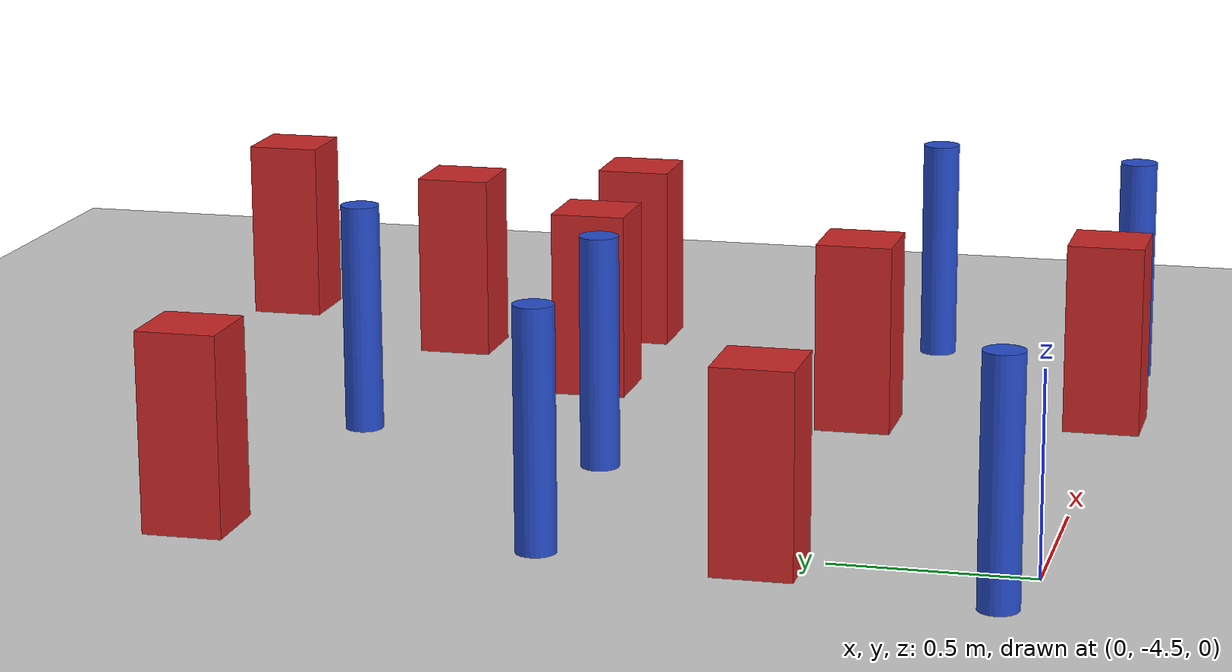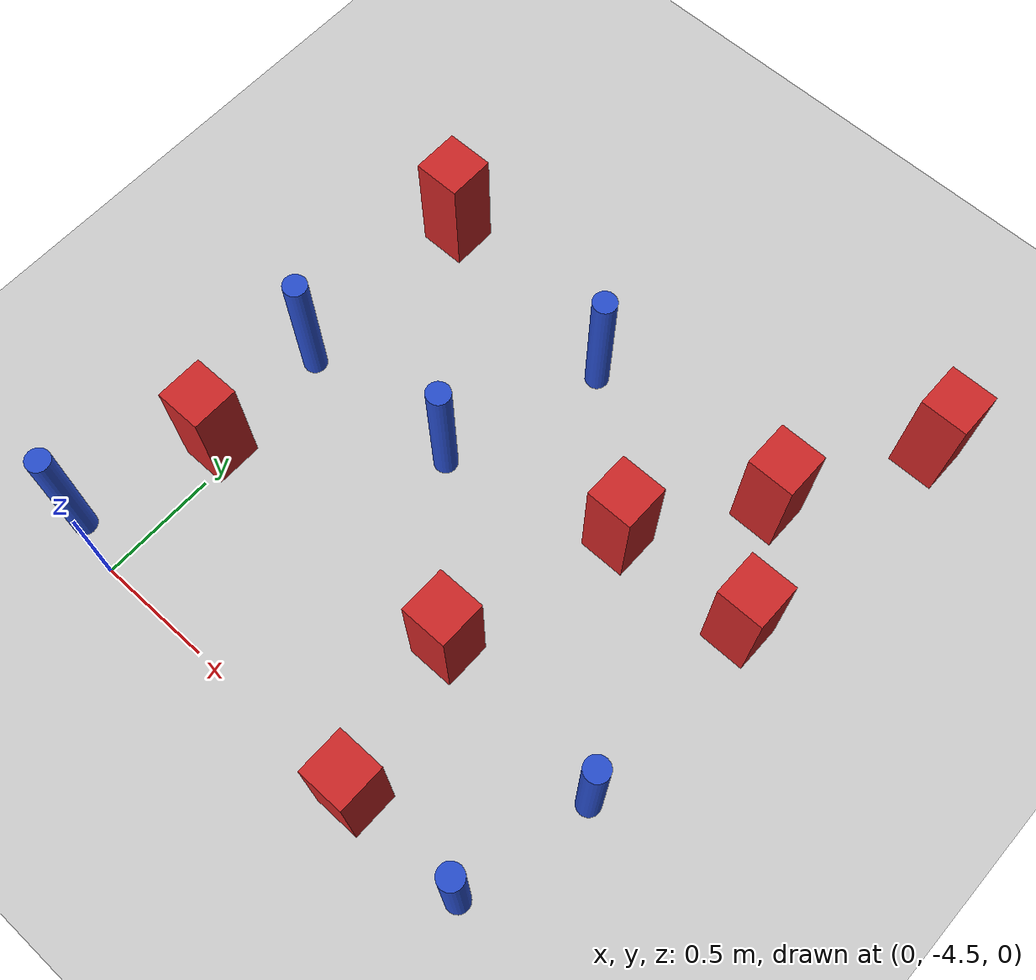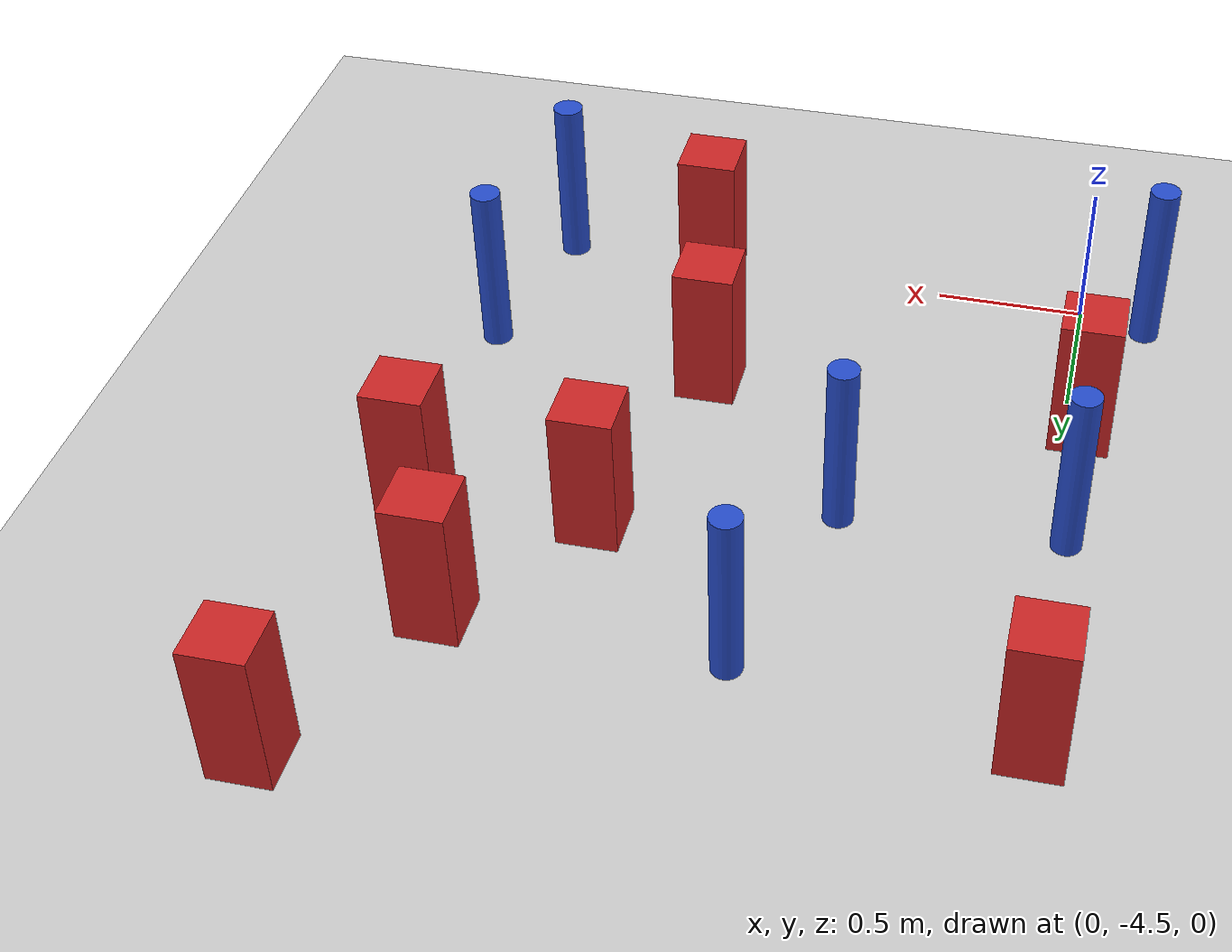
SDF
<sdf version="1.6">
 <world name="default">
  <model name="ground_plane">
   <static>1</static>
   <link name="link">
    <collision name="collision">
     <geometry><plane><normal>0 0 1</normal><size>100 100</size></plane></geometry>
     <surface><friction><ode><mu>100</mu><mu2>50</mu2></ode></friction></surface>
    </collision>
    <visual name="visual">
     <cast_shadows>0</cast_shadows>
     <geometry><plane><normal>0 0 1</normal><size>100 100</size></plane></geometry>
     <material>
      <ambient>1.0 1.0 1.0 1.0</ambient>
      <diffuse>0.8 0.8 0.8 1.0</diffuse>
      <specular>0.01 0.01 0.01 1.000000</specular>
     </material>
    </visual>
   </link>
  </model>
  <model name="square_post_obstacle33">
   <static>true</static>
   <pose>1.38309810057 -3.08793547738 8.22691968438e-08 7.2212513382e-06 -7.54495500217e-07 2.29674213826e-05</pose>
   <link name="link">
    <pose>0 0 0.25 0 -0 0</pose>
    <inertial>
     <mass>100</mass>
     <inertia>
      <ixx>0.166667</ixx>
      <ixy>0</ixy>
      <ixz>0</ixz>
      <iyy>0.166667</iyy>
      <iyz>0</iyz>
      <izz>0.166667</izz>
     </inertia>
    </inertial>
    <collision name="collision"><geometry><box><size>.2 .2 .5</size></box></geometry></collision>
    <visual name="visual">
     <geometry><box><size>.2 .2 .5</size></box></geometry>
     <material>
      <script><name>Gazebo/Red</name><uri>file://media/materials/scripts/gazebo.material</uri></script>
     </material>
    </visual>
   </link>
  </model>
  <model name="pole_obstacle45">
   <static>true</static>
   <pose>1.85048243267 -4.50542198533 2.88873142074e-08 -9.90536689852e-09 4.60219948989e-07 -1.2096599496e-07</pose>
   <link name="link">
    <pose>0 0 0.3 0 -0 0</pose>
    <inertial>
     <mass>1</mass>
     <inertia><ixx>0.145833</ixx><ixy>0</ixy><ixz>0</ixz><iyy>0.145833</iyy><iyz>0</iyz><izz>0.125</izz></inertia>
    </inertial>
    <collision name="collision">
     <geometry><cylinder><radius>0.05</radius><length>.6</length></cylinder></geometry>
    </collision>
    <visual name="visual">
     <geometry><cylinder><radius>0.05</radius><length>.6</length></cylinder></geometry>
     <material>
      <script><name>Gazebo/Blue</name><uri>file://media/materials/scripts/gazebo.material</uri></script>
     </material>
    </visual>
   </link>
  </model>
  <model name="square_post_obstacle69">
   <static>true</static>
   <pose>-0.0511654074525 -2.46885445732 8.22691968438e-08 7.2212513382e-06 -7.54495500217e-07 2.29674213826e-05</pose>
   <link name="link">
    <pose>0 0 0.25 0 -0 0</pose>
    <inertial>
     <mass>100</mass>
     <inertia>
      <ixx>0.166667</ixx>
      <ixy>0</ixy>
      <ixz>0</ixz>
      <iyy>0.166667</iyy>
      <iyz>0</iyz>
      <izz>0.166667</izz>
     </inertia>
    </inertial>
    <collision name="collision"><geometry><box><size>.2 .2 .5</size></box></geometry></collision>
    <visual name="visual">
     <geometry><box><size>.2 .2 .5</size></box></geometry>
     <material>
      <script><name>Gazebo/Red</name><uri>file://media/materials/scripts/gazebo.material</uri></script>
     </material>
    </visual>
   </link>
  </model>
  <model name="pole_obstacle88">
   <static>true</static>
   <pose>0.648081252535 -3.28849379341 2.88873142074e-08 -9.90536689636e-09 4.60219948994e-07 -1.20965994958e-07</pose>
   <link name="link">
    <pose>0 0 0.3 0 -0 0</pose>
    <inertial>
     <mass>1</mass>
     <inertia><ixx>0.145833</ixx><ixy>0</ixy><ixz>0</ixz><iyy>0.145833</iyy><iyz>0</iyz><izz>0.125</izz></inertia>
    </inertial>
    <collision name="collision">
     <geometry><cylinder><radius>0.05</radius><length>.6</length></cylinder></geometry>
    </collision>
    <visual name="visual">
     <geometry><cylinder><radius>0.05</radius><length>.6</length></cylinder></geometry>
     <material>
      <script><name>Gazebo/Blue</name><uri>file://media/materials/scripts/gazebo.material</uri></script>
     </material>
    </visual>
   </link>
  </model>
  <model name="pole_obstacle103">
   <static>true</static>
   <pose>-0.22448012162 -4.43620303594 2.88873142074e-08 -9.90536689703e-09 4.60219948992e-07 -1.20965994959e-07</pose>
   <link name="link">
    <pose>0 0 0.3 0 -0 0</pose>
    <inertial>
     <mass>1</mass>
     <inertia><ixx>0.145833</ixx><ixy>0</ixy><ixz>0</ixz><iyy>0.145833</iyy><iyz>0</iyz><izz>0.125</izz></inertia>
    </inertial>
    <collision name="collision">
     <geometry><cylinder><radius>0.05</radius><length>.6</length></cylinder></geometry>
    </collision>
    <visual name="visual">
     <geometry><cylinder><radius>0.05</radius><length>.6</length></cylinder></geometry>
     <material>
      <script><name>Gazebo/Blue</name><uri>file://media/materials/scripts/gazebo.material</uri></script>
     </material>
    </visual>
   </link>
  </model>
  <model name="square_post_obstacle95">
   <static>true</static>
   <pose>-0.055517162418 -3.85417466073 8.22691968438e-08 7.2212513382e-06 -7.54495500217e-07 2.29674213826e-05</pose>
   <link name="link">
    <pose>0 0 0.25 0 -0 0</pose>
    <inertial>
     <mass>100</mass>
     <inertia>
      <ixx>0.166667</ixx>
      <ixy>0</ixy>
      <ixz>0</ixz>
      <iyy>0.166667</iyy>
      <iyz>0</iyz>
      <izz>0.166667</izz>
     </inertia>
    </inertial>
    <collision name="collision"><geometry><box><size>.2 .2 .5</size></box></geometry></collision>
    <visual name="visual">
     <geometry><box><size>.2 .2 .5</size></box></geometry>
     <material>
      <script><name>Gazebo/Red</name><uri>file://media/materials/scripts/gazebo.material</uri></script>
     </material>
    </visual>
   </link>
  </model>
  <model name="pole_obstacle108">
   <static>true</static>
   <pose>-0.0636278913677 -3.31950558026 2.88873142074e-08 -9.90536689778e-09 4.60219948991e-07 -1.20965994959e-07</pose>
   <link name="link">
    <pose>0 0 0.3 0 -0 0</pose>
    <inertial>
     <mass>1</mass>
     <inertia><ixx>0.145833</ixx><ixy>0</ixy><ixz>0</ixz><iyy>0.145833</iyy><iyz>0</iyz><izz>0.125</izz></inertia>
    </inertial>
    <collision name="collision">
     <geometry><cylinder><radius>0.05</radius><length>.6</length></cylinder></geometry>
    </collision>
    <visual name="visual">
     <geometry><cylinder><radius>0.05</radius><length>.6</length></cylinder></geometry>
     <material>
      <script><name>Gazebo/Blue</name><uri>file://media/materials/scripts/gazebo.material</uri></script>
     </material>
    </visual>
   </link>
  </model>
  <model name="square_post_obstacle133">
   <static>true</static>
   <pose>1.19195181166 -3.85275905555 8.22691968438e-08 7.2212513382e-06 -7.54495500217e-07 2.29674213826e-05</pose>
   <link name="link">
    <pose>0 0 0.25 0 -0 0</pose>
    <inertial>
     <mass>100</mass>
     <inertia>
      <ixx>0.166667</ixx>
      <ixy>0</ixy>
      <ixz>0</ixz>
      <iyy>0.166667</iyy>
      <iyz>0</iyz>
      <izz>0.166667</izz>
     </inertia>
    </inertial>
    <collision name="collision"><geometry><box><size>.2 .2 .5</size></box></geometry></collision>
    <visual name="visual">
     <geometry><box><size>.2 .2 .5</size></box></geometry>
     <material>
      <script><name>Gazebo/Red</name><uri>file://media/materials/scripts/gazebo.material</uri></script>
     </material>
    </visual>
   </link>
  </model>
  <model name="square_post_obstacle134">
   <static>true</static>
   <pose>1.32915672135 -4.48997836216 8.22691968438e-08 7.2212513382e-06 -7.54495500217e-07 2.29674213826e-05</pose>
   <link name="link">
    <pose>0 0 0.25 0 -0 0</pose>
    <inertial>
     <mass>100</mass>
     <inertia>
      <ixx>0.166667</ixx>
      <ixy>0</ixy>
      <ixz>0</ixz>
      <iyy>0.166667</iyy>
      <iyz>0</iyz>
      <izz>0.166667</izz>
     </inertia>
    </inertial>
    <collision name="collision"><geometry><box><size>.2 .2 .5</size></box></geometry></collision>
    <visual name="visual">
     <geometry><box><size>.2 .2 .5</size></box></geometry>
     <material>
      <script><name>Gazebo/Red</name><uri>file://media/materials/scripts/gazebo.material</uri></script>
     </material>
    </visual>
   </link>
  </model>
  <model name="pole_obstacle153">
   <static>true</static>
   <pose>0.848655915704 -2.5945527872 2.88873142074e-08 -9.90536689636e-09 4.60219948994e-07 -1.20965994958e-07</pose>
   <link name="link">
    <pose>0 0 0.3 0 -0 0</pose>
    <inertial>
     <mass>1</mass>
     <inertia><ixx>0.145833</ixx><ixy>0</ixy><ixz>0</ixz><iyy>0.145833</iyy><iyz>0</iyz><izz>0.125</izz></inertia>
    </inertial>
    <collision name="collision">
     <geometry><cylinder><radius>0.05</radius><length>.6</length></cylinder></geometry>
    </collision>
    <visual name="visual">
     <geometry><cylinder><radius>0.05</radius><length>.6</length></cylinder></geometry>
     <material>
      <script><name>Gazebo/Blue</name><uri>file://media/materials/scripts/gazebo.material</uri></script>
     </material>
    </visual>
   </link>
  </model>
  <model name="square_post_obstacle166">
   <static>true</static>
   <pose>1.9644233587 -3.06777496147 8.22691968438e-08 7.2212513382e-06 -7.54495500217e-07 2.29674213826e-05</pose>
   <link name="link">
    <pose>0 0 0.25 0 -0 0</pose>
    <inertial>
     <mass>100</mass>
     <inertia>
      <ixx>0.166667</ixx>
      <ixy>0</ixy>
      <ixz>0</ixz>
      <iyy>0.166667</iyy>
      <iyz>0</iyz>
      <izz>0.166667</izz>
     </inertia>
    </inertial>
    <collision name="collision"><geometry><box><size>.2 .2 .5</size></box></geometry></collision>
    <visual name="visual">
     <geometry><box><size>.2 .2 .5</size></box></geometry>
     <material>
      <script><name>Gazebo/Red</name><uri>file://media/materials/scripts/gazebo.material</uri></script>
     </material>
    </visual>
   </link>
  </model>
  <model name="pole_obstacle191">
   <static>true</static>
   <pose>1.97079499008 -3.93820346569 2.88873142074e-08 -9.90536689941e-09 4.60219948987e-07 -1.20965994961e-07</pose>
   <link name="link">
    <pose>0 0 0.3 0 -0 0</pose>
    <inertial>
     <mass>1</mass>
     <inertia><ixx>0.145833</ixx><ixy>0</ixy><ixz>0</ixz><iyy>0.145833</iyy><iyz>0</iyz><izz>0.125</izz></inertia>
    </inertial>
    <collision name="collision">
     <geometry><cylinder><radius>0.05</radius><length>.6</length></cylinder></geometry>
    </collision>
    <visual name="visual">
     <geometry><cylinder><radius>0.05</radius><length>.6</length></cylinder></geometry>
     <material>
      <script><name>Gazebo/Blue</name><uri>file://media/materials/scripts/gazebo.material</uri></script>
     </material>
    </visual>
   </link>
  </model>
  <model name="square_post_obstacle206">
   <static>true</static>
   <pose>1.73466162295 -2.60154790158 8.22691968438e-08 7.2212513382e-06 -7.54495500217e-07 2.29674213826e-05</pose>
   <link name="link">
    <pose>0 0 0.25 0 -0 0</pose>
    <inertial>
     <mass>100</mass>
     <inertia>
      <ixx>0.166667</ixx>
      <ixy>0</ixy>
      <ixz>0</ixz>
      <iyy>0.166667</iyy>
      <iyz>0</iyz>
      <izz>0.166667</izz>
     </inertia>
    </inertial>
    <collision name="collision"><geometry><box><size>.2 .2 .5</size></box></geometry></collision>
    <visual name="visual">
     <geometry><box><size>.2 .2 .5</size></box></geometry>
     <material>
      <script><name>Gazebo/Red</name><uri>file://media/materials/scripts/gazebo.material</uri></script>
     </material>
    </visual>
   </link>
  </model>
  <model name="square_post_obstacle232">
   <static>true</static>
   <pose>2.05864793662 -1.98298424672 8.22691968438e-08 7.2212513382e-06 -7.54495500217e-07 2.29674213826e-05</pose>
   <link name="link">
    <pose>0 0 0.25 0 -0 0</pose>
    <inertial>
     <mass>100</mass>
     <inertia>
      <ixx>0.166667</ixx>
      <ixy>0</ixy>
      <ixz>0</ixz>
      <iyy>0.166667</iyy>
      <iyz>0</iyz>
      <izz>0.166667</izz>
     </inertia>
    </inertial>
    <collision name="collision"><geometry><box><size>.2 .2 .5</size></box></geometry></collision>
    <visual name="visual">
     <geometry><box><size>.2 .2 .5</size></box></geometry>
     <material>
      <script><name>Gazebo/Red</name><uri>file://media/materials/scripts/gazebo.material</uri></script>
     </material>
    </visual>
   </link>
  </model>
 </world>
</sdf>
